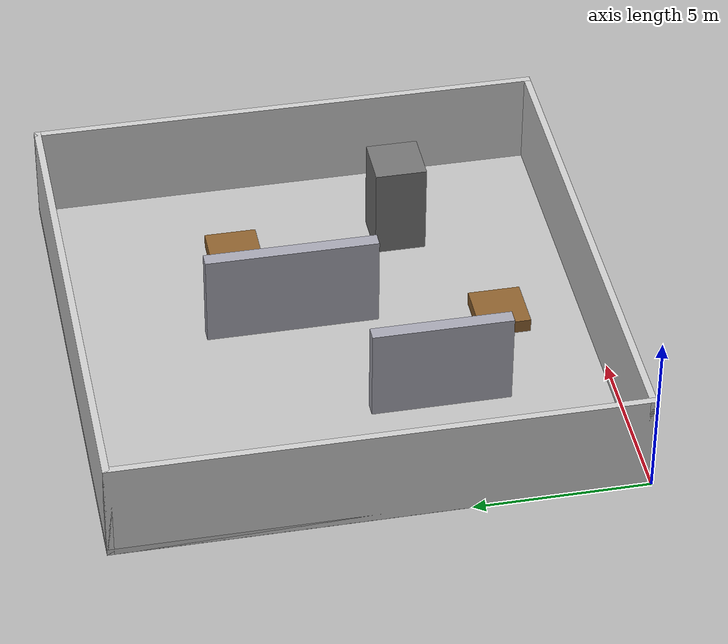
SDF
<?xml version="1.0" encoding="UTF-8" ?>
<sdf version="1.9">
  <world name="room">
    <physics type="ode">
      <max_step_size>0.001</max_step_size>
      <real_time_factor>1.0</real_time_factor>
      <real_time_update_rate>0</real_time_update_rate>
    </physics>
    <gravity>0 0 -9.8</gravity>
    <magnetic_field>6e-06 2.3e-05 -4.2e-05</magnetic_field>
    <atmosphere type="adiabatic" />
    <scene>
      <grid>false</grid>
      <ambient>0.8 0.8 0.8 1</ambient>
      <background>0.5 0.5 0.5 1</background>
      <shadows>true</shadows>
    </scene>
    <light name="sunUTC" type="directional">
      <pose>0 0 500 0 -0 0</pose>
      <cast_shadows>true</cast_shadows>
      <intensity>1</intensity>
      <direction>0.001 0.625 -0.78</direction>
      <diffuse>0.904 0.904 0.904 1</diffuse>
      <specular>0.271 0.271 0.271 1</specular>
      <attenuation>
        <range>2000</range>
        <linear>0</linear>
        <constant>1</constant>
        <quadratic>0</quadratic>
      </attenuation>
      <spot>
        <inner_angle>0</inner_angle>
        <outer_angle>0</outer_angle>
        <falloff>0</falloff>
      </spot>
    </light>
    <spherical_coordinates>
      <surface_model>EARTH_WGS84</surface_model>
      <world_frame_orientation>ENU</world_frame_orientation>
      <latitude_deg>51.9906361</latitude_deg>
      <longitude_deg>4.3767874</longitude_deg>
      <elevation>45.110</elevation>
    </spherical_coordinates>
    <model name="floor">
      <static>true</static>
      <pose>7.5 7.5 0.1 0.000000 0.000000 0.000000</pose>
      <link name="link">
          <collision name="collision">
            <pose>0.0 0.0 0.0 0.000000 0.000000 0.000000</pose>
            <geometry>
              <box><size>15.0 15.0 0.2</size></box>
            </geometry>
          </collision>
          <visual name="visual">
            <pose>0.0 0.0 0.0 0.000000 0.000000 0.000000</pose>
            <geometry>
              <box><size>15.0 15.0 0.2</size></box>
            </geometry>
            <material>
              <ambient>0.75 0.75 0.75 1</ambient>
              <diffuse>0.75 0.75 0.75 1</diffuse>
              <specular>0.1 0.1 0.1 1</specular>
            </material>
          </visual>
      </link>
    </model>
    <model name="wall_south">
      <static>true</static>
      <pose>7.5 0.1 1.5 0.000000 0.000000 0.000000</pose>
      <link name="link">
          <collision name="collision">
            <pose>0.0 0.0 0.0 0.000000 0.000000 0.000000</pose>
            <geometry>
              <box><size>15.0 0.2 3.0</size></box>
            </geometry>
          </collision>
          <visual name="visual">
            <pose>0.0 0.0 0.0 0.000000 0.000000 0.000000</pose>
            <geometry>
              <box><size>15.0 0.2 3.0</size></box>
            </geometry>
            <material>
              <ambient>0.8 0.8 0.8 1</ambient>
              <diffuse>0.8 0.8 0.8 1</diffuse>
              <specular>0.1 0.1 0.1 1</specular>
            </material>
          </visual>
      </link>
    </model>
    <model name="wall_north">
      <static>true</static>
      <pose>7.5 14.9 1.5 0.000000 0.000000 0.000000</pose>
      <link name="link">
          <collision name="collision">
            <pose>0.0 0.0 0.0 0.000000 0.000000 0.000000</pose>
            <geometry>
              <box><size>15.0 0.2 3.0</size></box>
            </geometry>
          </collision>
          <visual name="visual">
            <pose>0.0 0.0 0.0 0.000000 0.000000 0.000000</pose>
            <geometry>
              <box><size>15.0 0.2 3.0</size></box>
            </geometry>
            <material>
              <ambient>0.8 0.8 0.8 1</ambient>
              <diffuse>0.8 0.8 0.8 1</diffuse>
              <specular>0.1 0.1 0.1 1</specular>
            </material>
          </visual>
      </link>
    </model>
    <model name="wall_west">
      <static>true</static>
      <pose>0.1 7.5 1.5 0.000000 0.000000 0.000000</pose>
      <link name="link">
          <collision name="collision">
            <pose>0.0 0.0 0.0 0.000000 0.000000 0.000000</pose>
            <geometry>
              <box><size>0.2 15.0 3.0</size></box>
            </geometry>
          </collision>
          <visual name="visual">
            <pose>0.0 0.0 0.0 0.000000 0.000000 0.000000</pose>
            <geometry>
              <box><size>0.2 15.0 3.0</size></box>
            </geometry>
            <material>
              <ambient>0.8 0.8 0.8 1</ambient>
              <diffuse>0.8 0.8 0.8 1</diffuse>
              <specular>0.1 0.1 0.1 1</specular>
            </material>
          </visual>
      </link>
    </model>
    <model name="wall_east">
      <static>true</static>
      <pose>14.9 7.5 1.5 0.000000 0.000000 0.000000</pose>
      <link name="link">
          <collision name="collision">
            <pose>0.0 0.0 0.0 0.000000 0.000000 0.000000</pose>
            <geometry>
              <box><size>0.2 15.0 3.0</size></box>
            </geometry>
          </collision>
          <visual name="visual">
            <pose>0.0 0.0 0.0 0.000000 0.000000 0.000000</pose>
            <geometry>
              <box><size>0.2 15.0 3.0</size></box>
            </geometry>
            <material>
              <ambient>0.8 0.8 0.8 1</ambient>
              <diffuse>0.8 0.8 0.8 1</diffuse>
              <specular>0.1 0.1 0.1 1</specular>
            </material>
          </visual>
      </link>
    </model>
    <model name="wall_a">
      <static>true</static>
      <pose>4.2 5.0 1.5 0.000000 0.000000 0.000000</pose>
      <link name="link">
          <collision name="collision">
            <pose>0.0 0.0 0.0 0.000000 0.000000 0.000000</pose>
            <geometry>
              <box><size>0.4 4.0 3.0</size></box>
            </geometry>
          </collision>
          <visual name="visual">
            <pose>0.0 0.0 0.0 0.000000 0.000000 0.000000</pose>
            <geometry>
              <box><size>0.4 4.0 3.0</size></box>
            </geometry>
            <material>
              <ambient>0.65 0.65 0.7 1</ambient>
              <diffuse>0.65 0.65 0.7 1</diffuse>
              <specular>0.1 0.1 0.1 1</specular>
            </material>
          </visual>
      </link>
    </model>
    <model name="wall_b">
      <static>true</static>
      <pose>8.2 8.5 1.5 0.000000 0.000000 0.000000</pose>
      <link name="link">
          <collision name="collision">
            <pose>0.0 0.0 0.0 0.000000 0.000000 0.000000</pose>
            <geometry>
              <box><size>0.4 5.0 3.0</size></box>
            </geometry>
          </collision>
          <visual name="visual">
            <pose>0.0 0.0 0.0 0.000000 0.000000 0.000000</pose>
            <geometry>
              <box><size>0.4 5.0 3.0</size></box>
            </geometry>
            <material>
              <ambient>0.65 0.65 0.7 1</ambient>
              <diffuse>0.65 0.65 0.7 1</diffuse>
              <specular>0.1 0.1 0.1 1</specular>
            </material>
          </visual>
      </link>
    </model>
    <model name="table_a">
      <static>true</static>
      <pose>6.75 2.75 1.0 0.000000 0.000000 0.000000</pose>
      <link name="link">
          <collision name="collision">
            <pose>0.0 0.0 0.0 0.000000 0.000000 0.000000</pose>
            <geometry>
              <box><size>1.5 1.5 0.4</size></box>
            </geometry>
          </collision>
          <visual name="visual">
            <pose>0.0 0.0 0.0 0.000000 0.000000 0.000000</pose>
            <geometry>
              <box><size>1.5 1.5 0.4</size></box>
            </geometry>
            <material>
              <ambient>0.55 0.38 0.18 1</ambient>
              <diffuse>0.55 0.38 0.18 1</diffuse>
              <specular>0.1 0.1 0.1 1</specular>
            </material>
          </visual>
      </link>
    </model>
    <model name="table_b">
      <static>true</static>
      <pose>10.75 9.75 1.0 0.000000 0.000000 0.000000</pose>
      <link name="link">
          <collision name="collision">
            <pose>0.0 0.0 0.0 0.000000 0.000000 0.000000</pose>
            <geometry>
              <box><size>1.5 1.5 0.4</size></box>
            </geometry>
          </collision>
          <visual name="visual">
            <pose>0.0 0.0 0.0 0.000000 0.000000 0.000000</pose>
            <geometry>
              <box><size>1.5 1.5 0.4</size></box>
            </geometry>
            <material>
              <ambient>0.55 0.38 0.18 1</ambient>
              <diffuse>0.55 0.38 0.18 1</diffuse>
              <specular>0.1 0.1 0.1 1</specular>
            </material>
          </visual>
      </link>
    </model>
    <model name="column">
      <static>true</static>
      <pose>11.75 4.75 1.5 0.000000 0.000000 0.000000</pose>
      <link name="link">
          <collision name="collision">
            <pose>0.0 0.0 0.0 0.000000 0.000000 0.000000</pose>
            <geometry>
              <box><size>1.5 1.5 3.0</size></box>
            </geometry>
          </collision>
          <visual name="visual">
            <pose>0.0 0.0 0.0 0.000000 0.000000 0.000000</pose>
            <geometry>
              <box><size>1.5 1.5 3.0</size></box>
            </geometry>
            <material>
              <ambient>0.45 0.45 0.45 1</ambient>
              <diffuse>0.45 0.45 0.45 1</diffuse>
              <specular>0.1 0.1 0.1 1</specular>
            </material>
          </visual>
      </link>
    </model>
  </world>
</sdf>
